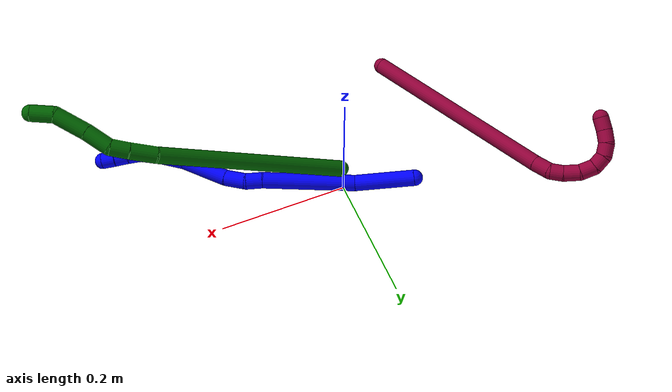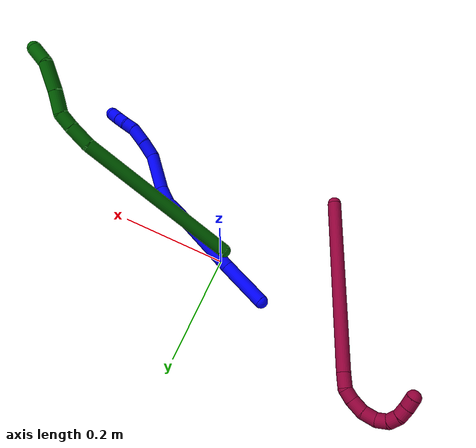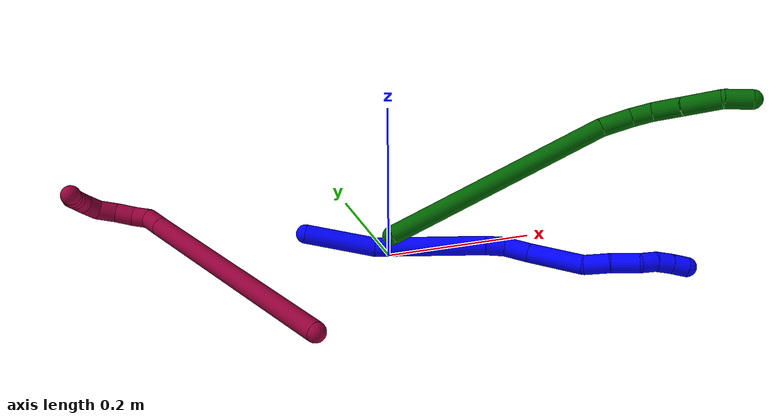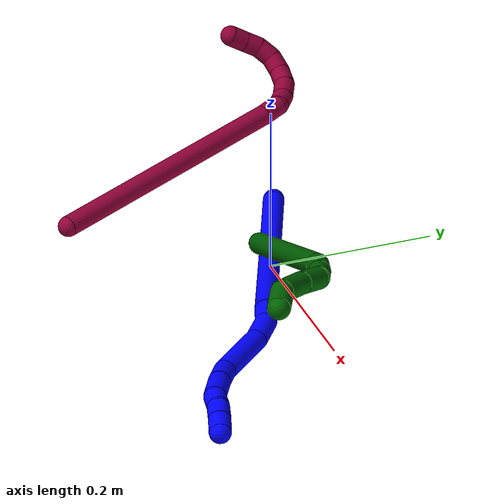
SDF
<sdf version="1.7">
 <world name="default">
  <model name="photoneo_s_sensor">
   <static>1</static>
   <pose>0 0 2 1.57079 1.57079 3.14159</pose>
   <link name="link">
    <inertial><mass>0.1</mass></inertial>
    <sensor name="sensor" type="depth">
     <update_rate>30</update_rate>
     <camera>
      <horizontal_fov>1.22</horizontal_fov>
      <image><width>1920</width><height>1200</height><format>B8G8R8</format></image>
      <clip><near>0.1</near><far>4</far></clip>
      <depth_camera><output>points</output></depth_camera>
     </camera>
     <plugin name="camera_plugin" filename="libgazebo_ros_depth_camera.so">
      <baseline>0.2</baseline>
      <alwaysOn>1</alwaysOn>
      <updateRate>0.0</updateRate>
      <cameraName>camera_ir</cameraName>
      <imageTopicName>/camera/color/image_raw</imageTopicName>
      <cameraInfoTopicName>/camera/color/camera_info</cameraInfoTopicName>
      <depthImageTopicName>/camera/depth/image_raw</depthImageTopicName>
      <depthImageCameraInfoTopicName>/camera/depth/camera_info</depthImageCameraInfoTopicName>
      <pointCloudTopicName>/camera/depth/points</pointCloudTopicName>
      <frameName>fr_optical</frameName>
      <pointCloudCutoff>0.1</pointCloudCutoff>
      <pointCloudCutoffMax>2.0</pointCloudCutoffMax>
      <distortionK1>0</distortionK1>
      <distortionK2>0</distortionK2>
      <distortionK3>0</distortionK3>
      <distortionT1>0</distortionT1>
      <distortionT2>0</distortionT2>
      <CxPrime>0</CxPrime>
      <Cx>0</Cx>
      <Cy>0</Cy>
      <focalLength>0</focalLength>
      <hackBaseline>0</hackBaseline>
     </plugin>
    </sensor>
   </link>
  </model>
  <model name="bin">
   <static>1</static>
   <link name="bottom">
    <collision name="collision-bottom">
     <pose>0 0 -0.01 0 -0 0</pose>
     <geometry><box><size>0.8 0.6 0.02</size></box></geometry>
     <surface>
      <friction><ode><mu>100</mu><mu2>100</mu2></ode></friction>
      <contact><collide_bitmask>65535</collide_bitmask></contact>
     </surface>
    </collision>
   </link>
   <link name="west_wall">
    <collision name="collision-west_wall">
     <pose>-0.41 0 0.1 0 -0 0</pose>
     <geometry><box><size>0.02 0.6 0.2</size></box></geometry>
     <surface>
      <friction><ode><mu>100</mu><mu2>100</mu2></ode></friction>
      <contact><collide_bitmask>65535</collide_bitmask></contact>
     </surface>
    </collision>
   </link>
   <link name="east_wall">
    <collision name="collision-east_wall">
     <pose>0.41 0 0.1 0 -0 0</pose>
     <geometry><box><size>0.02 0.6 0.2</size></box></geometry>
     <surface>
      <friction><ode><mu>100</mu><mu2>100</mu2></ode></friction>
      <contact><collide_bitmask>65535</collide_bitmask></contact>
     </surface>
    </collision>
   </link>
   <link name="south_wall">
    <collision name="collision-south_wall">
     <pose>0 -0.31 0.1 0 -0 0</pose>
     <geometry><box><size>0.8 0.02 0.2</size></box></geometry>
     <surface>
      <friction><ode><mu>100</mu><mu2>100</mu2></ode></friction>
      <contact><collide_bitmask>65535</collide_bitmask></contact>
     </surface>
    </collision>
   </link>
   <link name="north_wall">
    <collision name="collision-north_wall">
     <pose>0 0.31 0.1 0 -0 0</pose>
     <geometry><box><size>0.8 0.02 0.2</size></box></geometry>
     <surface>
      <friction><ode><mu>100</mu><mu2>100</mu2></ode></friction>
      <contact><collide_bitmask>65535</collide_bitmask></contact>
     </surface>
    </collision>
   </link>
  </model>
  <model name="1">
   <static>0</static>
   <link name="1">
    <collision name="collision-cylinder-e_1_1_4">
     <pose>0.042112 -0.017157 -0.010216 2.10785 1.12803 1.67752</pose>
     <geometry><cylinder><radius>0.0125</radius><length>0.093213</length></cylinder></geometry>
     <surface>
      <friction><ode><mu>1.16</mu><mu2>1.16</mu2><slip1>0</slip1><slip2>0</slip2></ode></friction>
      <contact><ode><kp>1e+06</kp><kd>1</kd><max_vel>0</max_vel><min_depth>0.001</min_depth></ode></contact>
     </surface>
    </collision>
    <visual name="visual-cylinder-e_1_1_4">
     <pose>0.042112 -0.017157 -0.010216 2.10785 1.12803 1.67752</pose>
     <geometry><cylinder><radius>0.0125</radius><length>0.093213</length></cylinder></geometry>
     <material><ambient>0 0 1 1</ambient></material>
    </visual>
    <collision name="collision-cylinder-e_2_4_5">
     <pose>0.151645 -0.059025 -0.020907 1.59003 1.21942 1.23755</pose>
     <geometry><cylinder><radius>0.0125</radius><length>0.143616</length></cylinder></geometry>
     <surface>
      <friction><ode><mu>1.16</mu><mu2>1.16</mu2><slip1>0</slip1><slip2>0</slip2></ode></friction>
      <contact><ode><kp>1e+06</kp><kd>1</kd><max_vel>0</max_vel><min_depth>0.001</min_depth></ode></contact>
     </surface>
    </collision>
    <visual name="visual-cylinder-e_2_4_5">
     <pose>0.151645 -0.059025 -0.020907 1.59003 1.21942 1.23755</pose>
     <geometry><cylinder><radius>0.0125</radius><length>0.143616</length></cylinder></geometry>
     <material><ambient>0 0 1 1</ambient></material>
    </visual>
    <collision name="collision-cylinder-e_3_5_6">
     <pose>0.231171 -0.087609 -0.022873 1.93816 1.24044 1.61017</pose>
     <geometry><cylinder><radius>0.0125</radius><length>0.025594</length></cylinder></geometry>
     <surface>
      <friction><ode><mu>1.16</mu><mu2>1.16</mu2><slip1>0</slip1><slip2>0</slip2></ode></friction>
      <contact><ode><kp>1e+06</kp><kd>1</kd><max_vel>0</max_vel><min_depth>0.001</min_depth></ode></contact>
     </surface>
    </collision>
    <visual name="visual-cylinder-e_3_5_6">
     <pose>0.231171 -0.087609 -0.022873 1.93816 1.24044 1.61017</pose>
     <geometry><cylinder><radius>0.0125</radius><length>0.025594</length></cylinder></geometry>
     <material><ambient>0 0 1 1</ambient></material>
    </visual>
    <collision name="collision-cylinder-e_4_6_7">
     <pose>0.256211 -0.101572 -0.026519 1.78117 0.897541 1.0738</pose>
     <geometry><cylinder><radius>0.0125</radius><length>0.033091</length></cylinder></geometry>
     <surface>
      <friction><ode><mu>1.16</mu><mu2>1.16</mu2><slip1>0</slip1><slip2>0</slip2></ode></friction>
      <contact><ode><kp>1e+06</kp><kd>1</kd><max_vel>0</max_vel><min_depth>0.001</min_depth></ode></contact>
     </surface>
    </collision>
    <visual name="visual-cylinder-e_4_6_7">
     <pose>0.256211 -0.101572 -0.026519 1.78117 0.897541 1.0738</pose>
     <geometry><cylinder><radius>0.0125</radius><length>0.033091</length></cylinder></geometry>
     <material><ambient>0 0 1 1</ambient></material>
    </visual>
    <collision name="collision-cylinder-e_5_7_8">
     <pose>0.294826 -0.138255 -0.02867 1.57067 0.767923 0.767835</pose>
     <geometry><cylinder><radius>0.0125</radius><length>0.073938</length></cylinder></geometry>
     <surface>
      <friction><ode><mu>1.16</mu><mu2>1.16</mu2><slip1>0</slip1><slip2>0</slip2></ode></friction>
      <contact><ode><kp>1e+06</kp><kd>1</kd><max_vel>0</max_vel><min_depth>0.001</min_depth></ode></contact>
     </surface>
    </collision>
    <visual name="visual-cylinder-e_5_7_8">
     <pose>0.294826 -0.138255 -0.02867 1.57067 0.767923 0.767835</pose>
     <geometry><cylinder><radius>0.0125</radius><length>0.073938</length></cylinder></geometry>
     <material><ambient>0 0 1 1</ambient></material>
    </visual>
    <collision name="collision-cylinder-e_6_8_9">
     <pose>0.335014 -0.172377 -0.02642 1.2808 1.07453 0.835555</pose>
     <geometry><cylinder><radius>0.0125</radius><length>0.032997</length></cylinder></geometry>
     <surface>
      <friction><ode><mu>1.16</mu><mu2>1.16</mu2><slip1>0</slip1><slip2>0</slip2></ode></friction>
      <contact><ode><kp>1e+06</kp><kd>1</kd><max_vel>0</max_vel><min_depth>0.001</min_depth></ode></contact>
     </surface>
    </collision>
    <visual name="visual-cylinder-e_6_8_9">
     <pose>0.335014 -0.172377 -0.02642 1.2808 1.07453 0.835555</pose>
     <geometry><cylinder><radius>0.0125</radius><length>0.032997</length></cylinder></geometry>
     <material><ambient>0 0 1 1</ambient></material>
    </visual>
    <collision name="collision-cylinder-e_7_9_10">
     <pose>0.365826 -0.187626 -0.023607 1.49759 1.12743 1.06232</pose>
     <geometry><cylinder><radius>0.0125</radius><length>0.036097</length></cylinder></geometry>
     <surface>
      <friction><ode><mu>1.16</mu><mu2>1.16</mu2><slip1>0</slip1><slip2>0</slip2></ode></friction>
      <contact><ode><kp>1e+06</kp><kd>1</kd><max_vel>0</max_vel><min_depth>0.001</min_depth></ode></contact>
     </surface>
    </collision>
    <visual name="visual-cylinder-e_7_9_10">
     <pose>0.365826 -0.187626 -0.023607 1.49759 1.12743 1.06232</pose>
     <geometry><cylinder><radius>0.0125</radius><length>0.036097</length></cylinder></geometry>
     <material><ambient>0 0 1 1</ambient></material>
    </visual>
    <collision name="collision-cylinder-e_8_10_11">
     <pose>0.392533 -0.19674 -0.023564 1.92996 1.42882 1.79362</pose>
     <geometry><cylinder><radius>0.0125</radius><length>0.021018</length></cylinder></geometry>
     <surface>
      <friction><ode><mu>1.16</mu><mu2>1.16</mu2><slip1>0</slip1><slip2>0</slip2></ode></friction>
      <contact><ode><kp>1e+06</kp><kd>1</kd><max_vel>0</max_vel><min_depth>0.001</min_depth></ode></contact>
     </surface>
    </collision>
    <visual name="visual-cylinder-e_8_10_11">
     <pose>0.392533 -0.19674 -0.023564 1.92996 1.42882 1.79362</pose>
     <geometry><cylinder><radius>0.0125</radius><length>0.021018</length></cylinder></geometry>
     <material><ambient>0 0 1 1</ambient></material>
    </visual>
    <collision name="collision-cylinder-e_9_11_12">
     <pose>0.412448 -0.200584 -0.026494 2.347 1.22415 2.06409</pose>
     <geometry><cylinder><radius>0.0125</radius><length>0.020228</length></cylinder></geometry>
     <surface>
      <friction><ode><mu>1.16</mu><mu2>1.16</mu2><slip1>0</slip1><slip2>0</slip2></ode></friction>
      <contact><ode><kp>1e+06</kp><kd>1</kd><max_vel>0</max_vel><min_depth>0.001</min_depth></ode></contact>
     </surface>
    </collision>
    <visual name="visual-cylinder-e_9_11_12">
     <pose>0.412448 -0.200584 -0.026494 2.347 1.22415 2.06409</pose>
     <geometry><cylinder><radius>0.0125</radius><length>0.020228</length></cylinder></geometry>
     <material><ambient>0 0 1 1</ambient></material>
    </visual>
    <collision name="collision-cylinder-e_10_12_2">
     <pose>0.431204 -0.20597 -0.031739 2.3395 1.15499 1.98778</pose>
     <geometry><cylinder><radius>0.0125</radius><length>0.020209</length></cylinder></geometry>
     <surface>
      <friction><ode><mu>1.16</mu><mu2>1.16</mu2><slip1>0</slip1><slip2>0</slip2></ode></friction>
      <contact><ode><kp>1e+06</kp><kd>1</kd><max_vel>0</max_vel><min_depth>0.001</min_depth></ode></contact>
     </surface>
    </collision>
    <visual name="visual-cylinder-e_10_12_2">
     <pose>0.431204 -0.20597 -0.031739 2.3395 1.15499 1.98778</pose>
     <geometry><cylinder><radius>0.0125</radius><length>0.020209</length></cylinder></geometry>
     <material><ambient>0 0 1 1</ambient></material>
    </visual>
    <collision name="collision-sphere-2">
     <pose>0.440448 -0.208904 -0.034576 0 -0 0</pose>
     <geometry><sphere><radius>0.0125</radius></sphere></geometry>
     <surface>
      <friction><ode><mu>1.16</mu><mu2>1.16</mu2><slip1>0</slip1><slip2>0</slip2></ode></friction>
      <contact><ode><kp>1e+06</kp><kd>1</kd><max_vel>0</max_vel><min_depth>0.001</min_depth></ode></contact>
     </surface>
    </collision>
    <visual name="visual-sphere-2">
     <pose>0.440448 -0.208904 -0.034576 0 -0 0</pose>
     <geometry><sphere><radius>0.0125</radius></sphere></geometry>
     <material><ambient>0 0 1 1</ambient></material>
    </visual>
    <collision name="collision-sphere-12">
     <pose>0.42196 -0.203036 -0.028901 0 -0 0</pose>
     <geometry><sphere><radius>0.0125</radius></sphere></geometry>
     <surface>
      <friction><ode><mu>1.16</mu><mu2>1.16</mu2><slip1>0</slip1><slip2>0</slip2></ode></friction>
      <contact><ode><kp>1e+06</kp><kd>1</kd><max_vel>0</max_vel><min_depth>0.001</min_depth></ode></contact>
     </surface>
    </collision>
    <visual name="visual-sphere-12">
     <pose>0.42196 -0.203036 -0.028901 0 -0 0</pose>
     <geometry><sphere><radius>0.0125</radius></sphere></geometry>
     <material><ambient>0 0 1 1</ambient></material>
    </visual>
    <collision name="collision-sphere-11">
     <pose>0.402936 -0.198132 -0.024087 0 -0 0</pose>
     <geometry><sphere><radius>0.0125</radius></sphere></geometry>
     <surface>
      <friction><ode><mu>1.16</mu><mu2>1.16</mu2><slip1>0</slip1><slip2>0</slip2></ode></friction>
      <contact><ode><kp>1e+06</kp><kd>1</kd><max_vel>0</max_vel><min_depth>0.001</min_depth></ode></contact>
     </surface>
    </collision>
    <visual name="visual-sphere-11">
     <pose>0.402936 -0.198132 -0.024087 0 -0 0</pose>
     <geometry><sphere><radius>0.0125</radius></sphere></geometry>
     <material><ambient>0 0 1 1</ambient></material>
    </visual>
    <collision name="collision-sphere-10">
     <pose>0.38213 -0.195348 -0.023041 0 -0 0</pose>
     <geometry><sphere><radius>0.0125</radius></sphere></geometry>
     <surface>
      <friction><ode><mu>1.16</mu><mu2>1.16</mu2><slip1>0</slip1><slip2>0</slip2></ode></friction>
      <contact><ode><kp>1e+06</kp><kd>1</kd><max_vel>0</max_vel><min_depth>0.001</min_depth></ode></contact>
     </surface>
    </collision>
    <visual name="visual-sphere-10">
     <pose>0.38213 -0.195348 -0.023041 0 -0 0</pose>
     <geometry><sphere><radius>0.0125</radius></sphere></geometry>
     <material><ambient>0 0 1 1</ambient></material>
    </visual>
    <collision name="collision-sphere-9">
     <pose>0.349522 -0.179904 -0.024174 0 -0 0</pose>
     <geometry><sphere><radius>0.0125</radius></sphere></geometry>
     <surface>
      <friction><ode><mu>1.16</mu><mu2>1.16</mu2><slip1>0</slip1><slip2>0</slip2></ode></friction>
      <contact><ode><kp>1e+06</kp><kd>1</kd><max_vel>0</max_vel><min_depth>0.001</min_depth></ode></contact>
     </surface>
    </collision>
    <visual name="visual-sphere-9">
     <pose>0.349522 -0.179904 -0.024174 0 -0 0</pose>
     <geometry><sphere><radius>0.0125</radius></sphere></geometry>
     <material><ambient>0 0 1 1</ambient></material>
    </visual>
    <collision name="collision-sphere-4">
     <pose>0.084225 -0.034314 -0.020432 0 -0 0</pose>
     <geometry><sphere><radius>0.0125</radius></sphere></geometry>
     <surface>
      <friction><ode><mu>1.16</mu><mu2>1.16</mu2><slip1>0</slip1><slip2>0</slip2></ode></friction>
      <contact><ode><kp>1e+06</kp><kd>1</kd><max_vel>0</max_vel><min_depth>0.001</min_depth></ode></contact>
     </surface>
    </collision>
    <visual name="visual-sphere-4">
     <pose>0.084225 -0.034314 -0.020432 0 -0 0</pose>
     <geometry><sphere><radius>0.0125</radius></sphere></geometry>
     <material><ambient>0 0 1 1</ambient></material>
    </visual>
    <collision name="collision-sphere-1">
     <geometry><sphere><radius>0.0125</radius></sphere></geometry>
     <surface>
      <friction><ode><mu>1.16</mu><mu2>1.16</mu2><slip1>0</slip1><slip2>0</slip2></ode></friction>
      <contact><ode><kp>1e+06</kp><kd>1</kd><max_vel>0</max_vel><min_depth>0.001</min_depth></ode></contact>
     </surface>
    </collision>
    <visual name="visual-sphere-1">
     <geometry><sphere><radius>0.0125</radius></sphere></geometry>
     <material><ambient>0 0 1 1</ambient></material>
    </visual>
    <collision name="collision-sphere-8">
     <pose>0.320506 -0.164849 -0.028666 0 -0 0</pose>
     <geometry><sphere><radius>0.0125</radius></sphere></geometry>
     <surface>
      <friction><ode><mu>1.16</mu><mu2>1.16</mu2><slip1>0</slip1><slip2>0</slip2></ode></friction>
      <contact><ode><kp>1e+06</kp><kd>1</kd><max_vel>0</max_vel><min_depth>0.001</min_depth></ode></contact>
     </surface>
    </collision>
    <visual name="visual-sphere-8">
     <pose>0.320506 -0.164849 -0.028666 0 -0 0</pose>
     <geometry><sphere><radius>0.0125</radius></sphere></geometry>
     <material><ambient>0 0 1 1</ambient></material>
    </visual>
    <collision name="collision-sphere-5">
     <pose>0.219066 -0.083735 -0.021382 0 -0 0</pose>
     <geometry><sphere><radius>0.0125</radius></sphere></geometry>
     <surface>
      <friction><ode><mu>1.16</mu><mu2>1.16</mu2><slip1>0</slip1><slip2>0</slip2></ode></friction>
      <contact><ode><kp>1e+06</kp><kd>1</kd><max_vel>0</max_vel><min_depth>0.001</min_depth></ode></contact>
     </surface>
    </collision>
    <visual name="visual-sphere-5">
     <pose>0.219066 -0.083735 -0.021382 0 -0 0</pose>
     <geometry><sphere><radius>0.0125</radius></sphere></geometry>
     <material><ambient>0 0 1 1</ambient></material>
    </visual>
    <collision name="collision-sphere-6">
     <pose>0.243276 -0.091483 -0.024364 0 -0 0</pose>
     <geometry><sphere><radius>0.0125</radius></sphere></geometry>
     <surface>
      <friction><ode><mu>1.16</mu><mu2>1.16</mu2><slip1>0</slip1><slip2>0</slip2></ode></friction>
      <contact><ode><kp>1e+06</kp><kd>1</kd><max_vel>0</max_vel><min_depth>0.001</min_depth></ode></contact>
     </surface>
    </collision>
    <visual name="visual-sphere-6">
     <pose>0.243276 -0.091483 -0.024364 0 -0 0</pose>
     <geometry><sphere><radius>0.0125</radius></sphere></geometry>
     <material><ambient>0 0 1 1</ambient></material>
    </visual>
    <collision name="collision-sphere-7">
     <pose>0.269146 -0.111662 -0.028673 0 -0 0</pose>
     <geometry><sphere><radius>0.0125</radius></sphere></geometry>
     <surface>
      <friction><ode><mu>1.16</mu><mu2>1.16</mu2><slip1>0</slip1><slip2>0</slip2></ode></friction>
      <contact><ode><kp>1e+06</kp><kd>1</kd><max_vel>0</max_vel><min_depth>0.001</min_depth></ode></contact>
     </surface>
    </collision>
    <visual name="visual-sphere-7">
     <pose>0.269146 -0.111662 -0.028673 0 -0 0</pose>
     <geometry><sphere><radius>0.0125</radius></sphere></geometry>
     <material><ambient>0 0 1 1</ambient></material>
    </visual>
    <inertial>
     <pose>0.222929 -0.101435 -0.021868 0 -0 0</pose>
     <mass>0.5</mass>
     <inertia><ixx>0.00022</ixx><ixy>0</ixy><ixz>0</ixz><iyy>0.000438</iyy><iyz>0</iyz><izz>-0.0002</izz></inertia>
    </inertial>
   </link>
   <pose>-0.100846 0.042606 0.02762 0.095279 -0.087711 -0.051729</pose>
  </model>
  <model name="6">
   <static>0</static>
   <link name="6">
    <collision name="collision-cylinder-e_1_1_4">
     <pose>0.084682 -0.031644 0.122653 0.252487 0.589292 0.076996</pose>
     <geometry><cylinder><radius>0.0125</radius><length>0.304737</length></cylinder></geometry>
     <surface>
      <friction><ode><mu>1.16</mu><mu2>1.16</mu2><slip1>0</slip1><slip2>0</slip2></ode></friction>
      <contact><ode><kp>1e+06</kp><kd>1</kd><max_vel>0</max_vel><min_depth>0.001</min_depth></ode></contact>
     </surface>
    </collision>
    <visual name="visual-cylinder-e_1_1_4">
     <pose>0.084682 -0.031644 0.122653 0.252487 0.589292 0.076996</pose>
     <geometry><cylinder><radius>0.0125</radius><length>0.304737</length></cylinder></geometry>
     <material><ambient>0 0.392157 0.003922 1</ambient></material>
    </visual>
    <collision name="collision-cylinder-e_2_4_5">
     <pose>0.180132 -0.063457 0.262504 0.009845 0.559333 0.002827</pose>
     <geometry><cylinder><radius>0.0125</radius><length>0.040582</length></cylinder></geometry>
     <surface>
      <friction><ode><mu>1.16</mu><mu2>1.16</mu2><slip1>0</slip1><slip2>0</slip2></ode></friction>
      <contact><ode><kp>1e+06</kp><kd>1</kd><max_vel>0</max_vel><min_depth>0.001</min_depth></ode></contact>
     </surface>
    </collision>
    <visual name="visual-cylinder-e_2_4_5">
     <pose>0.180132 -0.063457 0.262504 0.009845 0.559333 0.002827</pose>
     <geometry><cylinder><radius>0.0125</radius><length>0.040582</length></cylinder></geometry>
     <material><ambient>0 0.392157 0.003922 1</ambient></material>
    </visual>
    <collision name="collision-cylinder-e_3_5_6">
     <pose>0.198318 -0.062507 0.291817 -0.092093 0.547654 -0.025884</pose>
     <geometry><cylinder><radius>0.0125</radius><length>0.028501</length></cylinder></geometry>
     <surface>
      <friction><ode><mu>1.16</mu><mu2>1.16</mu2><slip1>0</slip1><slip2>0</slip2></ode></friction>
      <contact><ode><kp>1e+06</kp><kd>1</kd><max_vel>0</max_vel><min_depth>0.001</min_depth></ode></contact>
     </surface>
    </collision>
    <visual name="visual-cylinder-e_3_5_6">
     <pose>0.198318 -0.062507 0.291817 -0.092093 0.547654 -0.025884</pose>
     <geometry><cylinder><radius>0.0125</radius><length>0.028501</length></cylinder></geometry>
     <material><ambient>0 0.392157 0.003922 1</ambient></material>
    </visual>
    <collision name="collision-cylinder-e_4_6_7">
     <pose>0.218189 -0.052401 0.3165 -0.620761 0.678294 -0.225346</pose>
     <geometry><cylinder><radius>0.0125</radius><length>0.039686</length></cylinder></geometry>
     <surface>
      <friction><ode><mu>1.16</mu><mu2>1.16</mu2><slip1>0</slip1><slip2>0</slip2></ode></friction>
      <contact><ode><kp>1e+06</kp><kd>1</kd><max_vel>0</max_vel><min_depth>0.001</min_depth></ode></contact>
     </surface>
    </collision>
    <visual name="visual-cylinder-e_4_6_7">
     <pose>0.218189 -0.052401 0.3165 -0.620761 0.678294 -0.225346</pose>
     <geometry><cylinder><radius>0.0125</radius><length>0.039686</length></cylinder></geometry>
     <material><ambient>0 0.392157 0.003922 1</ambient></material>
    </visual>
    <collision name="collision-cylinder-e_5_7_8">
     <pose>0.246147 -0.033393 0.346767 -0.515211 0.651412 -0.177491</pose>
     <geometry><cylinder><radius>0.0125</radius><length>0.051153</length></cylinder></geometry>
     <surface>
      <friction><ode><mu>1.16</mu><mu2>1.16</mu2><slip1>0</slip1><slip2>0</slip2></ode></friction>
      <contact><ode><kp>1e+06</kp><kd>1</kd><max_vel>0</max_vel><min_depth>0.001</min_depth></ode></contact>
     </surface>
    </collision>
    <visual name="visual-cylinder-e_5_7_8">
     <pose>0.246147 -0.033393 0.346767 -0.515211 0.651412 -0.177491</pose>
     <geometry><cylinder><radius>0.0125</radius><length>0.051153</length></cylinder></geometry>
     <material><ambient>0 0.392157 0.003922 1</ambient></material>
    </visual>
    <collision name="collision-cylinder-e_6_8_2">
     <pose>0.266726 -0.019541 0.380954 -0.22826 0.291119 -0.033605</pose>
     <geometry><cylinder><radius>0.0125</radius><length>0.03534</length></cylinder></geometry>
     <surface>
      <friction><ode><mu>1.16</mu><mu2>1.16</mu2><slip1>0</slip1><slip2>0</slip2></ode></friction>
      <contact><ode><kp>1e+06</kp><kd>1</kd><max_vel>0</max_vel><min_depth>0.001</min_depth></ode></contact>
     </surface>
    </collision>
    <visual name="visual-cylinder-e_6_8_2">
     <pose>0.266726 -0.019541 0.380954 -0.22826 0.291119 -0.033605</pose>
     <geometry><cylinder><radius>0.0125</radius><length>0.03534</length></cylinder></geometry>
     <material><ambient>0 0.392157 0.003922 1</ambient></material>
    </visual>
    <collision name="collision-sphere-2">
     <pose>0.271798 -0.015711 0.397441 0 -0 0</pose>
     <geometry><sphere><radius>0.0125</radius></sphere></geometry>
     <surface>
      <friction><ode><mu>1.16</mu><mu2>1.16</mu2><slip1>0</slip1><slip2>0</slip2></ode></friction>
      <contact><ode><kp>1e+06</kp><kd>1</kd><max_vel>0</max_vel><min_depth>0.001</min_depth></ode></contact>
     </surface>
    </collision>
    <visual name="visual-sphere-2">
     <pose>0.271798 -0.015711 0.397441 0 -0 0</pose>
     <geometry><sphere><radius>0.0125</radius></sphere></geometry>
     <material><ambient>0 0.392157 0.003922 1</ambient></material>
    </visual>
    <collision name="collision-sphere-4">
     <pose>0.169365 -0.063287 0.245306 0 -0 0</pose>
     <geometry><sphere><radius>0.0125</radius></sphere></geometry>
     <surface>
      <friction><ode><mu>1.16</mu><mu2>1.16</mu2><slip1>0</slip1><slip2>0</slip2></ode></friction>
      <contact><ode><kp>1e+06</kp><kd>1</kd><max_vel>0</max_vel><min_depth>0.001</min_depth></ode></contact>
     </surface>
    </collision>
    <visual name="visual-sphere-4">
     <pose>0.169365 -0.063287 0.245306 0 -0 0</pose>
     <geometry><sphere><radius>0.0125</radius></sphere></geometry>
     <material><ambient>0 0.392157 0.003922 1</ambient></material>
    </visual>
    <collision name="collision-sphere-1">
     <geometry><sphere><radius>0.0125</radius></sphere></geometry>
     <surface>
      <friction><ode><mu>1.16</mu><mu2>1.16</mu2><slip1>0</slip1><slip2>0</slip2></ode></friction>
      <contact><ode><kp>1e+06</kp><kd>1</kd><max_vel>0</max_vel><min_depth>0.001</min_depth></ode></contact>
     </surface>
    </collision>
    <visual name="visual-sphere-1">
     <geometry><sphere><radius>0.0125</radius></sphere></geometry>
     <material><ambient>0 0.392157 0.003922 1</ambient></material>
    </visual>
    <collision name="collision-sphere-8">
     <pose>0.261655 -0.023371 0.364466 0 -0 0</pose>
     <geometry><sphere><radius>0.0125</radius></sphere></geometry>
     <surface>
      <friction><ode><mu>1.16</mu><mu2>1.16</mu2><slip1>0</slip1><slip2>0</slip2></ode></friction>
      <contact><ode><kp>1e+06</kp><kd>1</kd><max_vel>0</max_vel><min_depth>0.001</min_depth></ode></contact>
     </surface>
    </collision>
    <visual name="visual-sphere-8">
     <pose>0.261655 -0.023371 0.364466 0 -0 0</pose>
     <geometry><sphere><radius>0.0125</radius></sphere></geometry>
     <material><ambient>0 0.392157 0.003922 1</ambient></material>
    </visual>
    <collision name="collision-sphere-5">
     <pose>0.190898 -0.063626 0.279702 0 -0 0</pose>
     <geometry><sphere><radius>0.0125</radius></sphere></geometry>
     <surface>
      <friction><ode><mu>1.16</mu><mu2>1.16</mu2><slip1>0</slip1><slip2>0</slip2></ode></friction>
      <contact><ode><kp>1e+06</kp><kd>1</kd><max_vel>0</max_vel><min_depth>0.001</min_depth></ode></contact>
     </surface>
    </collision>
    <visual name="visual-sphere-5">
     <pose>0.190898 -0.063626 0.279702 0 -0 0</pose>
     <geometry><sphere><radius>0.0125</radius></sphere></geometry>
     <material><ambient>0 0.392157 0.003922 1</ambient></material>
    </visual>
    <collision name="collision-sphere-6">
     <pose>0.205739 -0.061388 0.303932 0 -0 0</pose>
     <geometry><sphere><radius>0.0125</radius></sphere></geometry>
     <surface>
      <friction><ode><mu>1.16</mu><mu2>1.16</mu2><slip1>0</slip1><slip2>0</slip2></ode></friction>
      <contact><ode><kp>1e+06</kp><kd>1</kd><max_vel>0</max_vel><min_depth>0.001</min_depth></ode></contact>
     </surface>
    </collision>
    <visual name="visual-sphere-6">
     <pose>0.205739 -0.061388 0.303932 0 -0 0</pose>
     <geometry><sphere><radius>0.0125</radius></sphere></geometry>
     <material><ambient>0 0.392157 0.003922 1</ambient></material>
    </visual>
    <collision name="collision-sphere-7">
     <pose>0.23064 -0.043414 0.329068 0 -0 0</pose>
     <geometry><sphere><radius>0.0125</radius></sphere></geometry>
     <surface>
      <friction><ode><mu>1.16</mu><mu2>1.16</mu2><slip1>0</slip1><slip2>0</slip2></ode></friction>
      <contact><ode><kp>1e+06</kp><kd>1</kd><max_vel>0</max_vel><min_depth>0.001</min_depth></ode></contact>
     </surface>
    </collision>
    <visual name="visual-sphere-7">
     <pose>0.23064 -0.043414 0.329068 0 -0 0</pose>
     <geometry><sphere><radius>0.0125</radius></sphere></geometry>
     <material><ambient>0 0.392157 0.003922 1</ambient></material>
    </visual>
    <inertial>
     <pose>0.138889 -0.036956 0.200218 0 -0 0</pose>
     <mass>0.5</mass>
     <inertia>
      <ixx>0.002163</ixx>
      <ixy>0</ixy>
      <ixz>0</ixz>
      <iyy>0.002494</iyy>
      <iyz>0</iyz>
      <izz>-0.000823</izz>
     </inertia>
    </inertial>
   </link>
   <pose>-0.000332 -0.013503 0.033467 -2.15271 -1.19974 -1.18526</pose>
  </model>
  <model name="8">
   <static>0</static>
   <link name="8">
    <collision name="collision-cylinder-e_1_1_4">
     <pose>-0.066395 0.104398 0.102677 -0.793708 -0.425703 0.180659</pose>
     <geometry><cylinder><radius>0.0125</radius><length>0.321557</length></cylinder></geometry>
     <surface>
      <friction><ode><mu>1.16</mu><mu2>1.16</mu2><slip1>0</slip1><slip2>0</slip2></ode></friction>
      <contact><ode><kp>1e+06</kp><kd>1</kd><max_vel>0</max_vel><min_depth>0.001</min_depth></ode></contact>
     </surface>
    </collision>
    <visual name="visual-cylinder-e_1_1_4">
     <pose>-0.066395 0.104398 0.102677 -0.793708 -0.425703 0.180659</pose>
     <geometry><cylinder><radius>0.0125</radius><length>0.321557</length></cylinder></geometry>
     <material><ambient>0.584314 0 0.227451 1</ambient></material>
    </visual>
    <collision name="collision-cylinder-e_2_4_5">
     <pose>-0.138718 0.21818 0.213335 -0.866071 -0.448462 0.210094</pose>
     <geometry><cylinder><radius>0.0125</radius><length>0.027344</length></cylinder></geometry>
     <surface>
      <friction><ode><mu>1.16</mu><mu2>1.16</mu2><slip1>0</slip1><slip2>0</slip2></ode></friction>
      <contact><ode><kp>1e+06</kp><kd>1</kd><max_vel>0</max_vel><min_depth>0.001</min_depth></ode></contact>
     </surface>
    </collision>
    <visual name="visual-cylinder-e_2_4_5">
     <pose>-0.138718 0.21818 0.213335 -0.866071 -0.448462 0.210094</pose>
     <geometry><cylinder><radius>0.0125</radius><length>0.027344</length></cylinder></geometry>
     <material><ambient>0.584314 0 0.227451 1</ambient></material>
    </visual>
    <collision name="collision-cylinder-e_3_5_6">
     <pose>-0.144948 0.236994 0.225172 -1.18253 -0.029565 0.01985</pose>
     <geometry><cylinder><radius>0.0125</radius><length>0.020382</length></cylinder></geometry>
     <surface>
      <friction><ode><mu>1.16</mu><mu2>1.16</mu2><slip1>0</slip1><slip2>0</slip2></ode></friction>
      <contact><ode><kp>1e+06</kp><kd>1</kd><max_vel>0</max_vel><min_depth>0.001</min_depth></ode></contact>
     </surface>
    </collision>
    <visual name="visual-cylinder-e_3_5_6">
     <pose>-0.144948 0.236994 0.225172 -1.18253 -0.029565 0.01985</pose>
     <geometry><cylinder><radius>0.0125</radius><length>0.020382</length></cylinder></geometry>
     <material><ambient>0.584314 0 0.227451 1</ambient></material>
    </visual>
    <collision name="collision-cylinder-e_4_6_7">
     <pose>-0.145694 0.25884 0.231155 -1.4012 -0.035343 0.029806</pose>
     <geometry><cylinder><radius>0.0125</radius><length>0.025213</length></cylinder></geometry>
     <surface>
      <friction><ode><mu>1.16</mu><mu2>1.16</mu2><slip1>0</slip1><slip2>0</slip2></ode></friction>
      <contact><ode><kp>1e+06</kp><kd>1</kd><max_vel>0</max_vel><min_depth>0.001</min_depth></ode></contact>
     </surface>
    </collision>
    <visual name="visual-cylinder-e_4_6_7">
     <pose>-0.145694 0.25884 0.231155 -1.4012 -0.035343 0.029806</pose>
     <geometry><cylinder><radius>0.0125</radius><length>0.025213</length></cylinder></geometry>
     <material><ambient>0.584314 0 0.227451 1</ambient></material>
    </visual>
    <collision name="collision-cylinder-e_5_7_8">
     <pose>-0.144856 0.283178 0.231591 -1.7117 0.106184 -0.122271</pose>
     <geometry><cylinder><radius>0.0125</radius><length>0.024217</length></cylinder></geometry>
     <surface>
      <friction><ode><mu>1.16</mu><mu2>1.16</mu2><slip1>0</slip1><slip2>0</slip2></ode></friction>
      <contact><ode><kp>1e+06</kp><kd>1</kd><max_vel>0</max_vel><min_depth>0.001</min_depth></ode></contact>
     </surface>
    </collision>
    <visual name="visual-cylinder-e_5_7_8">
     <pose>-0.144856 0.283178 0.231591 -1.7117 0.106184 -0.122271</pose>
     <geometry><cylinder><radius>0.0125</radius><length>0.024217</length></cylinder></geometry>
     <material><ambient>0.584314 0 0.227451 1</ambient></material>
    </visual>
    <collision name="collision-cylinder-e_6_8_9">
     <pose>-0.143853 0.303513 0.22364 -2.21046 -0.02666 0.053055</pose>
     <geometry><cylinder><radius>0.0125</radius><length>0.020981</length></cylinder></geometry>
     <surface>
      <friction><ode><mu>1.16</mu><mu2>1.16</mu2><slip1>0</slip1><slip2>0</slip2></ode></friction>
      <contact><ode><kp>1e+06</kp><kd>1</kd><max_vel>0</max_vel><min_depth>0.001</min_depth></ode></contact>
     </surface>
    </collision>
    <visual name="visual-cylinder-e_6_8_9">
     <pose>-0.143853 0.303513 0.22364 -2.21046 -0.02666 0.053055</pose>
     <geometry><cylinder><radius>0.0125</radius><length>0.020981</length></cylinder></geometry>
     <material><ambient>0.584314 0 0.227451 1</ambient></material>
    </visual>
    <collision name="collision-cylinder-e_7_9_10">
     <pose>-0.143195 0.316091 0.208335 -2.7101 0.093855 -0.422185</pose>
     <geometry><cylinder><radius>0.0125</radius><length>0.020003</length></cylinder></geometry>
     <surface>
      <friction><ode><mu>1.16</mu><mu2>1.16</mu2><slip1>0</slip1><slip2>0</slip2></ode></friction>
      <contact><ode><kp>1e+06</kp><kd>1</kd><max_vel>0</max_vel><min_depth>0.001</min_depth></ode></contact>
     </surface>
    </collision>
    <visual name="visual-cylinder-e_7_9_10">
     <pose>-0.143195 0.316091 0.208335 -2.7101 0.093855 -0.422185</pose>
     <geometry><cylinder><radius>0.0125</radius><length>0.020003</length></cylinder></geometry>
     <material><ambient>0.584314 0 0.227451 1</ambient></material>
    </visual>
    <collision name="collision-cylinder-e_8_10_11">
     <pose>-0.140214 0.32092 0.18951 -3.07375 0.205565 -2.50587</pose>
     <geometry><cylinder><radius>0.0125</radius><length>0.020026</length></cylinder></geometry>
     <surface>
      <friction><ode><mu>1.16</mu><mu2>1.16</mu2><slip1>0</slip1><slip2>0</slip2></ode></friction>
      <contact><ode><kp>1e+06</kp><kd>1</kd><max_vel>0</max_vel><min_depth>0.001</min_depth></ode></contact>
     </surface>
    </collision>
    <visual name="visual-cylinder-e_8_10_11">
     <pose>-0.140214 0.32092 0.18951 -3.07375 0.205565 -2.50587</pose>
     <geometry><cylinder><radius>0.0125</radius><length>0.020026</length></cylinder></geometry>
     <material><ambient>0.584314 0 0.227451 1</ambient></material>
    </visual>
    <collision name="collision-cylinder-e_9_11_2">
     <pose>-0.13697 0.321195 0.169671 3.10293 0.118601 2.51201</pose>
     <geometry><cylinder><radius>0.0125</radius><length>0.020277</length></cylinder></geometry>
     <surface>
      <friction><ode><mu>1.16</mu><mu2>1.16</mu2><slip1>0</slip1><slip2>0</slip2></ode></friction>
      <contact><ode><kp>1e+06</kp><kd>1</kd><max_vel>0</max_vel><min_depth>0.001</min_depth></ode></contact>
     </surface>
    </collision>
    <visual name="visual-cylinder-e_9_11_2">
     <pose>-0.13697 0.321195 0.169671 3.10293 0.118601 2.51201</pose>
     <geometry><cylinder><radius>0.0125</radius><length>0.020277</length></cylinder></geometry>
     <material><ambient>0.584314 0 0.227451 1</ambient></material>
    </visual>
    <collision name="collision-sphere-2">
     <pose>-0.135771 0.320806 0.159611 0 -0 0</pose>
     <geometry><sphere><radius>0.0125</radius></sphere></geometry>
     <surface>
      <friction><ode><mu>1.16</mu><mu2>1.16</mu2><slip1>0</slip1><slip2>0</slip2></ode></friction>
      <contact><ode><kp>1e+06</kp><kd>1</kd><max_vel>0</max_vel><min_depth>0.001</min_depth></ode></contact>
     </surface>
    </collision>
    <visual name="visual-sphere-2">
     <pose>-0.135771 0.320806 0.159611 0 -0 0</pose>
     <geometry><sphere><radius>0.0125</radius></sphere></geometry>
     <material><ambient>0.584314 0 0.227451 1</ambient></material>
    </visual>
    <collision name="collision-sphere-11">
     <pose>-0.13817 0.321585 0.179731 0 -0 0</pose>
     <geometry><sphere><radius>0.0125</radius></sphere></geometry>
     <surface>
      <friction><ode><mu>1.16</mu><mu2>1.16</mu2><slip1>0</slip1><slip2>0</slip2></ode></friction>
      <contact><ode><kp>1e+06</kp><kd>1</kd><max_vel>0</max_vel><min_depth>0.001</min_depth></ode></contact>
     </surface>
    </collision>
    <visual name="visual-sphere-11">
     <pose>-0.13817 0.321585 0.179731 0 -0 0</pose>
     <geometry><sphere><radius>0.0125</radius></sphere></geometry>
     <material><ambient>0.584314 0 0.227451 1</ambient></material>
    </visual>
    <collision name="collision-sphere-10">
     <pose>-0.142258 0.320255 0.19929 0 -0 0</pose>
     <geometry><sphere><radius>0.0125</radius></sphere></geometry>
     <surface>
      <friction><ode><mu>1.16</mu><mu2>1.16</mu2><slip1>0</slip1><slip2>0</slip2></ode></friction>
      <contact><ode><kp>1e+06</kp><kd>1</kd><max_vel>0</max_vel><min_depth>0.001</min_depth></ode></contact>
     </surface>
    </collision>
    <visual name="visual-sphere-10">
     <pose>-0.142258 0.320255 0.19929 0 -0 0</pose>
     <geometry><sphere><radius>0.0125</radius></sphere></geometry>
     <material><ambient>0.584314 0 0.227451 1</ambient></material>
    </visual>
    <collision name="collision-sphere-9">
     <pose>-0.144132 0.311926 0.21738 0 -0 0</pose>
     <geometry><sphere><radius>0.0125</radius></sphere></geometry>
     <surface>
      <friction><ode><mu>1.16</mu><mu2>1.16</mu2><slip1>0</slip1><slip2>0</slip2></ode></friction>
      <contact><ode><kp>1e+06</kp><kd>1</kd><max_vel>0</max_vel><min_depth>0.001</min_depth></ode></contact>
     </surface>
    </collision>
    <visual name="visual-sphere-9">
     <pose>-0.144132 0.311926 0.21738 0 -0 0</pose>
     <geometry><sphere><radius>0.0125</radius></sphere></geometry>
     <material><ambient>0.584314 0 0.227451 1</ambient></material>
    </visual>
    <collision name="collision-sphere-4">
     <pose>-0.132791 0.208795 0.205354 0 -0 0</pose>
     <geometry><sphere><radius>0.0125</radius></sphere></geometry>
     <surface>
      <friction><ode><mu>1.16</mu><mu2>1.16</mu2><slip1>0</slip1><slip2>0</slip2></ode></friction>
      <contact><ode><kp>1e+06</kp><kd>1</kd><max_vel>0</max_vel><min_depth>0.001</min_depth></ode></contact>
     </surface>
    </collision>
    <visual name="visual-sphere-4">
     <pose>-0.132791 0.208795 0.205354 0 -0 0</pose>
     <geometry><sphere><radius>0.0125</radius></sphere></geometry>
     <material><ambient>0.584314 0 0.227451 1</ambient></material>
    </visual>
    <collision name="collision-sphere-1">
     <geometry><sphere><radius>0.0125</radius></sphere></geometry>
     <surface>
      <friction><ode><mu>1.16</mu><mu2>1.16</mu2><slip1>0</slip1><slip2>0</slip2></ode></friction>
      <contact><ode><kp>1e+06</kp><kd>1</kd><max_vel>0</max_vel><min_depth>0.001</min_depth></ode></contact>
     </surface>
    </collision>
    <visual name="visual-sphere-1">
     <geometry><sphere><radius>0.0125</radius></sphere></geometry>
     <material><ambient>0.584314 0 0.227451 1</ambient></material>
    </visual>
    <collision name="collision-sphere-8">
     <pose>-0.143573 0.295099 0.2299 0 -0 0</pose>
     <geometry><sphere><radius>0.0125</radius></sphere></geometry>
     <surface>
      <friction><ode><mu>1.16</mu><mu2>1.16</mu2><slip1>0</slip1><slip2>0</slip2></ode></friction>
      <contact><ode><kp>1e+06</kp><kd>1</kd><max_vel>0</max_vel><min_depth>0.001</min_depth></ode></contact>
     </surface>
    </collision>
    <visual name="visual-sphere-8">
     <pose>-0.143573 0.295099 0.2299 0 -0 0</pose>
     <geometry><sphere><radius>0.0125</radius></sphere></geometry>
     <material><ambient>0.584314 0 0.227451 1</ambient></material>
    </visual>
    <collision name="collision-sphere-5">
     <pose>-0.144646 0.227566 0.221316 0 -0 0</pose>
     <geometry><sphere><radius>0.0125</radius></sphere></geometry>
     <surface>
      <friction><ode><mu>1.16</mu><mu2>1.16</mu2><slip1>0</slip1><slip2>0</slip2></ode></friction>
      <contact><ode><kp>1e+06</kp><kd>1</kd><max_vel>0</max_vel><min_depth>0.001</min_depth></ode></contact>
     </surface>
    </collision>
    <visual name="visual-sphere-5">
     <pose>-0.144646 0.227566 0.221316 0 -0 0</pose>
     <geometry><sphere><radius>0.0125</radius></sphere></geometry>
     <material><ambient>0.584314 0 0.227451 1</ambient></material>
    </visual>
    <collision name="collision-sphere-6">
     <pose>-0.145249 0.246422 0.229029 0 -0 0</pose>
     <geometry><sphere><radius>0.0125</radius></sphere></geometry>
     <surface>
      <friction><ode><mu>1.16</mu><mu2>1.16</mu2><slip1>0</slip1><slip2>0</slip2></ode></friction>
      <contact><ode><kp>1e+06</kp><kd>1</kd><max_vel>0</max_vel><min_depth>0.001</min_depth></ode></contact>
     </surface>
    </collision>
    <visual name="visual-sphere-6">
     <pose>-0.145249 0.246422 0.229029 0 -0 0</pose>
     <geometry><sphere><radius>0.0125</radius></sphere></geometry>
     <material><ambient>0.584314 0 0.227451 1</ambient></material>
    </visual>
    <collision name="collision-sphere-7">
     <pose>-0.14614 0.271257 0.233282 0 -0 0</pose>
     <geometry><sphere><radius>0.0125</radius></sphere></geometry>
     <surface>
      <friction><ode><mu>1.16</mu><mu2>1.16</mu2><slip1>0</slip1><slip2>0</slip2></ode></friction>
      <contact><ode><kp>1e+06</kp><kd>1</kd><max_vel>0</max_vel><min_depth>0.001</min_depth></ode></contact>
     </surface>
    </collision>
    <visual name="visual-sphere-7">
     <pose>-0.14614 0.271257 0.233282 0 -0 0</pose>
     <geometry><sphere><radius>0.0125</radius></sphere></geometry>
     <material><ambient>0.584314 0 0.227451 1</ambient></material>
    </visual>
    <inertial>
     <pose>-0.093493 0.166761 0.141942 0 -0 0</pose>
     <mass>0.5</mass>
     <inertia>
      <ixx>0.002947</ixx>
      <ixy>0</ixy>
      <ixz>0</ixz>
      <iyy>0.00255</iyy>
      <iyz>0</iyz>
      <izz>-0.000654</izz>
     </inertia>
    </inertial>
   </link>
   <pose>-0.150865 -0.195346 0.012345 2.7449 0.852459 -2.1713</pose>
  </model>
 </world>
</sdf>
